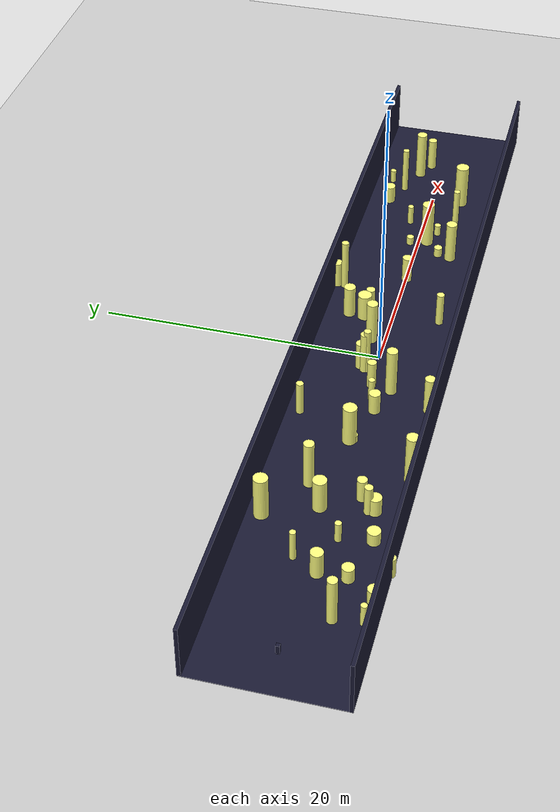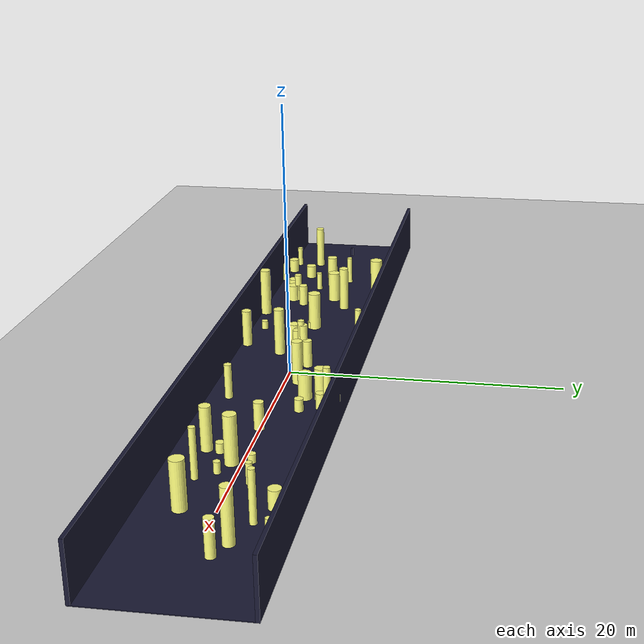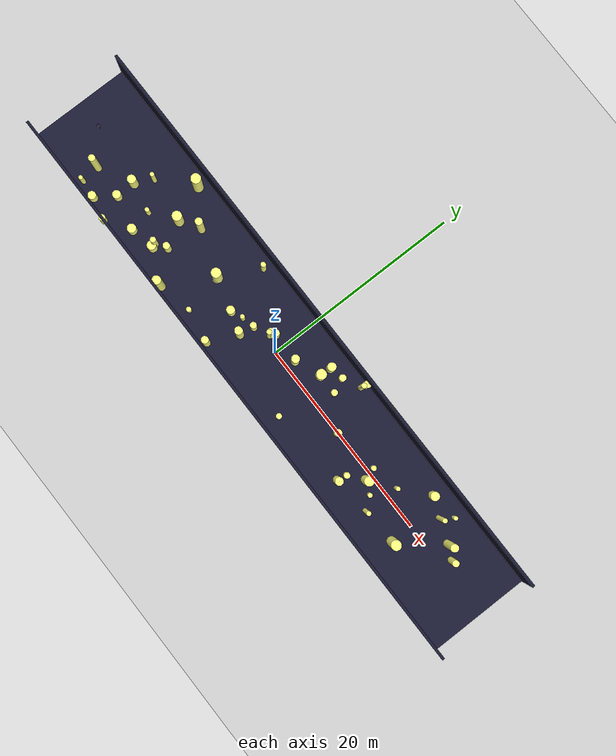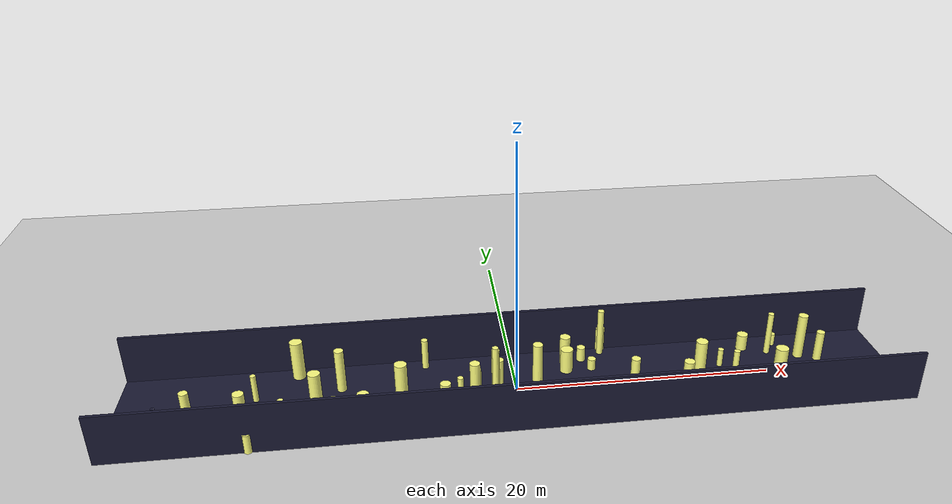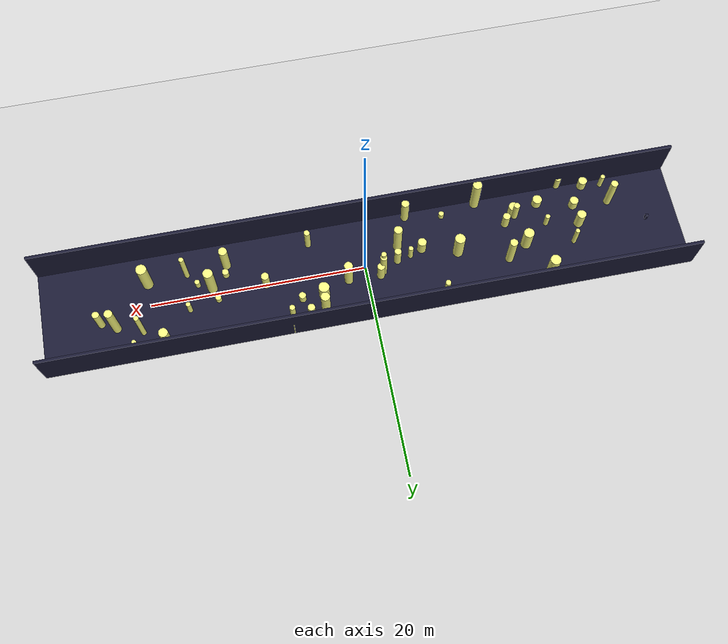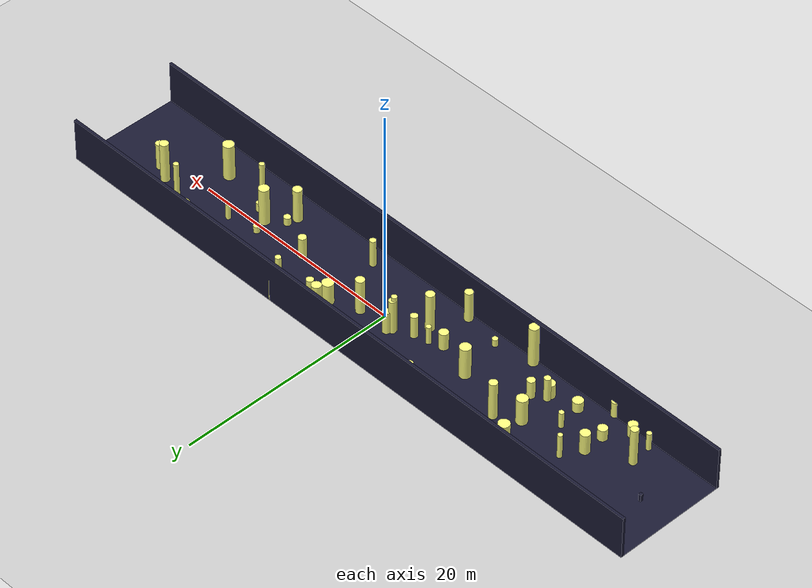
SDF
<?xml version="1.0"?>
<sdf version="1.4">
  <world name="default">
    <gui>
      <camera name="user_camera">
        <pose>-20 -30 40 0 0.66 0.83</pose>
      </camera>
    </gui>
    <include>
      <uri>model://ground_plane</uri>
    </include>
    <include>
      <uri>model://sun</uri>
    </include>
    <scene>
      <shadows>0</shadows>
    </scene>
    <model name="forest">
      <static>true</static>
      <link name="cylinder0">
        <pose>4.207462384008654 2.0124005233982887 1.0143114515591825 0 0 0 </pose>
        <visual name="visual">
          <geometry>
            <cylinder>
              <radius>0.4961914796225806</radius>
              <length>2.028622903118365</length>
            </cylinder>
          </geometry>
          <material>
            <ambient>0.6 0.6 0.6 1</ambient>
            <diffuse>1 1 0.5 1</diffuse>
            <specular>0 0 0</specular>
            <emissive>0 0 0 1</emissive>
          </material>
        </visual>
        <collision name="collision">
          <geometry>
            <cylinder>
              <radius>0.4961914796225806</radius>
              <length>2.028622903118365</length>
            </cylinder>
          </geometry>
          <max_contacts>0</max_contacts>
        </collision>
      </link>
      <link name="cylinder1">
        <pose>16.503894800346316 1.1303996438796826 0.7740977121148211 0 0 0 </pose>
        <visual name="visual">
          <geometry>
            <cylinder>
              <radius>0.21901101376045518</radius>
              <length>1.5481954242296423</length>
            </cylinder>
          </geometry>
          <material>
            <ambient>0.6 0.6 0.6 1</ambient>
            <diffuse>1 1 0.5 1</diffuse>
            <specular>0 0 0</specular>
            <emissive>0 0 0 1</emissive>
          </material>
        </visual>
        <collision name="collision">
          <geometry>
            <cylinder>
              <radius>0.21901101376045518</radius>
              <length>1.5481954242296423</length>
            </cylinder>
          </geometry>
          <max_contacts>0</max_contacts>
        </collision>
      </link>
      <link name="cylinder2">
        <pose>-1.2571074622218674 1.0588889887852568 1.0639597870531357 0 0 0 </pose>
        <visual name="visual">
          <geometry>
            <cylinder>
              <radius>0.3480653997893901</radius>
              <length>2.1279195741062713</length>
            </cylinder>
          </geometry>
          <material>
            <ambient>0.6 0.6 0.6 1</ambient>
            <diffuse>1 1 0.5 1</diffuse>
            <specular>0 0 0</specular>
            <emissive>0 0 0 1</emissive>
          </material>
        </visual>
        <collision name="collision">
          <geometry>
            <cylinder>
              <radius>0.3480653997893901</radius>
              <length>2.1279195741062713</length>
            </cylinder>
          </geometry>
          <max_contacts>0</max_contacts>
        </collision>
      </link>
      <link name="cylinder3">
        <pose>-3.3314136921522355 -1.5330139536178802 1.8297649361272734 0 0 0 </pose>
        <visual name="visual">
          <geometry>
            <cylinder>
              <radius>0.38803011518234964</radius>
              <length>3.659529872254547</length>
            </cylinder>
          </geometry>
          <material>
            <ambient>0.6 0.6 0.6 1</ambient>
            <diffuse>1 1 0.5 1</diffuse>
            <specular>0 0 0</specular>
            <emissive>0 0 0 1</emissive>
          </material>
        </visual>
        <collision name="collision">
          <geometry>
            <cylinder>
              <radius>0.38803011518234964</radius>
              <length>3.659529872254547</length>
            </cylinder>
          </geometry>
          <max_contacts>0</max_contacts>
        </collision>
      </link>
      <link name="cylinder4">
        <pose>-6.839889640970416 3.9485737746795646 1.2876052855601603 0 0 0 </pose>
        <visual name="visual">
          <geometry>
            <cylinder>
              <radius>0.25304900351984855</radius>
              <length>2.5752105711203206</length>
            </cylinder>
          </geometry>
          <material>
            <ambient>0.6 0.6 0.6 1</ambient>
            <diffuse>1 1 0.5 1</diffuse>
            <specular>0 0 0</specular>
            <emissive>0 0 0 1</emissive>
          </material>
        </visual>
        <collision name="collision">
          <geometry>
            <cylinder>
              <radius>0.25304900351984855</radius>
              <length>2.5752105711203206</length>
            </cylinder>
          </geometry>
          <max_contacts>0</max_contacts>
        </collision>
      </link>
      <link name="cylinder5">
        <pose>21.811122007107905 3.616574075852565 0.5295471856752879 0 0 0 </pose>
        <visual name="visual">
          <geometry>
            <cylinder>
              <radius>0.2138056266933654</radius>
              <length>1.0590943713505758</length>
            </cylinder>
          </geometry>
          <material>
            <ambient>0.6 0.6 0.6 1</ambient>
            <diffuse>1 1 0.5 1</diffuse>
            <specular>0 0 0</specular>
            <emissive>0 0 0 1</emissive>
          </material>
        </visual>
        <collision name="collision">
          <geometry>
            <cylinder>
              <radius>0.2138056266933654</radius>
              <length>1.0590943713505758</length>
            </cylinder>
          </geometry>
          <max_contacts>0</max_contacts>
        </collision>
      </link>
      <link name="cylinder6">
        <pose>15.490679764962053 -1.1866727142266553 0.44581196191695893 0 0 0 </pose>
        <visual name="visual">
          <geometry>
            <cylinder>
              <radius>0.2337264192884729</radius>
              <length>0.8916239238339179</length>
            </cylinder>
          </geometry>
          <material>
            <ambient>0.6 0.6 0.6 1</ambient>
            <diffuse>1 1 0.5 1</diffuse>
            <specular>0 0 0</specular>
            <emissive>0 0 0 1</emissive>
          </material>
        </visual>
        <collision name="collision">
          <geometry>
            <cylinder>
              <radius>0.2337264192884729</radius>
              <length>0.8916239238339179</length>
            </cylinder>
          </geometry>
          <max_contacts>0</max_contacts>
        </collision>
      </link>
      <link name="cylinder7">
        <pose>-4.610105147036553 -4.397541689260977 1.4437339379377543 0 0 0 </pose>
        <visual name="visual">
          <geometry>
            <cylinder>
              <radius>0.35809416290230306</radius>
              <length>2.8874678758755086</length>
            </cylinder>
          </geometry>
          <material>
            <ambient>0.6 0.6 0.6 1</ambient>
            <diffuse>1 1 0.5 1</diffuse>
            <specular>0 0 0</specular>
            <emissive>0 0 0 1</emissive>
          </material>
        </visual>
        <collision name="collision">
          <geometry>
            <cylinder>
              <radius>0.35809416290230306</radius>
              <length>2.8874678758755086</length>
            </cylinder>
          </geometry>
          <max_contacts>0</max_contacts>
        </collision>
      </link>
      <link name="cylinder8">
        <pose>-16.70384392320605 3.884796756335266 1.625202149748707 0 0 0 </pose>
        <visual name="visual">
          <geometry>
            <cylinder>
              <radius>0.4900319864771655</radius>
              <length>3.250404299497414</length>
            </cylinder>
          </geometry>
          <material>
            <ambient>0.6 0.6 0.6 1</ambient>
            <diffuse>1 1 0.5 1</diffuse>
            <specular>0 0 0</specular>
            <emissive>0 0 0 1</emissive>
          </material>
        </visual>
        <collision name="collision">
          <geometry>
            <cylinder>
              <radius>0.4900319864771655</radius>
              <length>3.250404299497414</length>
            </cylinder>
          </geometry>
          <max_contacts>0</max_contacts>
        </collision>
      </link>
      <link name="cylinder9">
        <pose>-1.5619298359917835 0.7207795170217377 1.6143439437256846 0 0 0 </pose>
        <visual name="visual">
          <geometry>
            <cylinder>
              <radius>0.31416586508432315</radius>
              <length>3.228687887451369</length>
            </cylinder>
          </geometry>
          <material>
            <ambient>0.6 0.6 0.6 1</ambient>
            <diffuse>1 1 0.5 1</diffuse>
            <specular>0 0 0</specular>
            <emissive>0 0 0 1</emissive>
          </material>
        </visual>
        <collision name="collision">
          <geometry>
            <cylinder>
              <radius>0.31416586508432315</radius>
              <length>3.228687887451369</length>
            </cylinder>
          </geometry>
          <max_contacts>0</max_contacts>
        </collision>
      </link>
      <link name="cylinder10">
        <pose>23.270171168695335 1.6734894421014 1.9090622724596977 0 0 0 </pose>
        <visual name="visual">
          <geometry>
            <cylinder>
              <radius>0.3827456616416114</radius>
              <length>3.8181245449193955</length>
            </cylinder>
          </geometry>
          <material>
            <ambient>0.6 0.6 0.6 1</ambient>
            <diffuse>1 1 0.5 1</diffuse>
            <specular>0 0 0</specular>
            <emissive>0 0 0 1</emissive>
          </material>
        </visual>
        <collision name="collision">
          <geometry>
            <cylinder>
              <radius>0.3827456616416114</radius>
              <length>3.8181245449193955</length>
            </cylinder>
          </geometry>
          <max_contacts>0</max_contacts>
        </collision>
      </link>
      <link name="cylinder11">
        <pose>-21.893467537018 -4.45291488045409 0.5842312328675338 0 0 0 </pose>
        <visual name="visual">
          <geometry>
            <cylinder>
              <radius>0.4033590323555616</radius>
              <length>1.1684624657350675</length>
            </cylinder>
          </geometry>
          <material>
            <ambient>0.6 0.6 0.6 1</ambient>
            <diffuse>1 1 0.5 1</diffuse>
            <specular>0 0 0</specular>
            <emissive>0 0 0 1</emissive>
          </material>
        </visual>
        <collision name="collision">
          <geometry>
            <cylinder>
              <radius>0.4033590323555616</radius>
              <length>1.1684624657350675</length>
            </cylinder>
          </geometry>
          <max_contacts>0</max_contacts>
        </collision>
      </link>
      <link name="cylinder12">
        <pose>-20.57528404254881 -2.597538009350311 0.5619214732392589 0 0 0 </pose>
        <visual name="visual">
          <geometry>
            <cylinder>
              <radius>0.41130171966658047</radius>
              <length>1.1238429464785178</length>
            </cylinder>
          </geometry>
          <material>
            <ambient>0.6 0.6 0.6 1</ambient>
            <diffuse>1 1 0.5 1</diffuse>
            <specular>0 0 0</specular>
            <emissive>0 0 0 1</emissive>
          </material>
        </visual>
        <collision name="collision">
          <geometry>
            <cylinder>
              <radius>0.41130171966658047</radius>
              <length>1.1238429464785178</length>
            </cylinder>
          </geometry>
          <max_contacts>0</max_contacts>
        </collision>
      </link>
      <link name="cylinder13">
        <pose>12.629321194451776 -2.6722837068491154 1.6068529922853552 0 0 0 </pose>
        <visual name="visual">
          <geometry>
            <cylinder>
              <radius>0.3961350075498339</radius>
              <length>3.2137059845707103</length>
            </cylinder>
          </geometry>
          <material>
            <ambient>0.6 0.6 0.6 1</ambient>
            <diffuse>1 1 0.5 1</diffuse>
            <specular>0 0 0</specular>
            <emissive>0 0 0 1</emissive>
          </material>
        </visual>
        <collision name="collision">
          <geometry>
            <cylinder>
              <radius>0.3961350075498339</radius>
              <length>3.2137059845707103</length>
            </cylinder>
          </geometry>
          <max_contacts>0</max_contacts>
        </collision>
      </link>
      <link name="cylinder14">
        <pose>-14.856804065980667 -2.5454073509658857 1.1288991256136471 0 0 0 </pose>
        <visual name="visual">
          <geometry>
            <cylinder>
              <radius>0.28445987101292286</radius>
              <length>2.2577982512272943</length>
            </cylinder>
          </geometry>
          <material>
            <ambient>0.6 0.6 0.6 1</ambient>
            <diffuse>1 1 0.5 1</diffuse>
            <specular>0 0 0</specular>
            <emissive>0 0 0 1</emissive>
          </material>
        </visual>
        <collision name="collision">
          <geometry>
            <cylinder>
              <radius>0.28445987101292286</radius>
              <length>2.2577982512272943</length>
            </cylinder>
          </geometry>
          <max_contacts>0</max_contacts>
        </collision>
      </link>
      <link name="cylinder15">
        <pose>4.265179666468256 3.135074294752128 1.2399874201561265 0 0 0 </pose>
        <visual name="visual">
          <geometry>
            <cylinder>
              <radius>0.4175504680054547</radius>
              <length>2.479974840312253</length>
            </cylinder>
          </geometry>
          <material>
            <ambient>0.6 0.6 0.6 1</ambient>
            <diffuse>1 1 0.5 1</diffuse>
            <specular>0 0 0</specular>
            <emissive>0 0 0 1</emissive>
          </material>
        </visual>
        <collision name="collision">
          <geometry>
            <cylinder>
              <radius>0.4175504680054547</radius>
              <length>2.479974840312253</length>
            </cylinder>
          </geometry>
          <max_contacts>0</max_contacts>
        </collision>
      </link>
      <link name="cylinder16">
        <pose>12.817386202606087 -1.729859327940594 0.3943249245855788 0 0 0 </pose>
        <visual name="visual">
          <geometry>
            <cylinder>
              <radius>0.3045503120598569</radius>
              <length>0.7886498491711575</length>
            </cylinder>
          </geometry>
          <material>
            <ambient>0.6 0.6 0.6 1</ambient>
            <diffuse>1 1 0.5 1</diffuse>
            <specular>0 0 0</specular>
            <emissive>0 0 0 1</emissive>
          </material>
        </visual>
        <collision name="collision">
          <geometry>
            <cylinder>
              <radius>0.3045503120598569</radius>
              <length>0.7886498491711575</length>
            </cylinder>
          </geometry>
          <max_contacts>0</max_contacts>
        </collision>
      </link>
      <link name="cylinder17">
        <pose>6.230235221788185 2.0030809036254347 0.49540171229052843 0 0 0 </pose>
        <visual name="visual">
          <geometry>
            <cylinder>
              <radius>0.3213882290122361</radius>
              <length>0.9908034245810569</length>
            </cylinder>
          </geometry>
          <material>
            <ambient>0.6 0.6 0.6 1</ambient>
            <diffuse>1 1 0.5 1</diffuse>
            <specular>0 0 0</specular>
            <emissive>0 0 0 1</emissive>
          </material>
        </visual>
        <collision name="collision">
          <geometry>
            <cylinder>
              <radius>0.3213882290122361</radius>
              <length>0.9908034245810569</length>
            </cylinder>
          </geometry>
          <max_contacts>0</max_contacts>
        </collision>
      </link>
      <link name="cylinder18">
        <pose>-1.5858248264119297 0.5533625153884962 1.7777227645040772 0 0 0 </pose>
        <visual name="visual">
          <geometry>
            <cylinder>
              <radius>0.24557690189991524</radius>
              <length>3.5554455290081544</length>
            </cylinder>
          </geometry>
          <material>
            <ambient>0.6 0.6 0.6 1</ambient>
            <diffuse>1 1 0.5 1</diffuse>
            <specular>0 0 0</specular>
            <emissive>0 0 0 1</emissive>
          </material>
        </visual>
        <collision name="collision">
          <geometry>
            <cylinder>
              <radius>0.24557690189991524</radius>
              <length>3.5554455290081544</length>
            </cylinder>
          </geometry>
          <max_contacts>0</max_contacts>
        </collision>
      </link>
      <link name="cylinder19">
        <pose>-13.784425643144422 -1.8990095026936316 0.8714203807095786 0 0 0 </pose>
        <visual name="visual">
          <geometry>
            <cylinder>
              <radius>0.34333280742411426</radius>
              <length>1.7428407614191572</length>
            </cylinder>
          </geometry>
          <material>
            <ambient>0.6 0.6 0.6 1</ambient>
            <diffuse>1 1 0.5 1</diffuse>
            <specular>0 0 0</specular>
            <emissive>0 0 0 1</emissive>
          </material>
        </visual>
        <collision name="collision">
          <geometry>
            <cylinder>
              <radius>0.34333280742411426</radius>
              <length>1.7428407614191572</length>
            </cylinder>
          </geometry>
          <max_contacts>0</max_contacts>
        </collision>
      </link>
      <link name="cylinder20">
        <pose>-5.510114892365376 -0.8622686153859069 0.8176378632308379 0 0 0 </pose>
        <visual name="visual">
          <geometry>
            <cylinder>
              <radius>0.4046559124061596</radius>
              <length>1.6352757264616757</length>
            </cylinder>
          </geometry>
          <material>
            <ambient>0.6 0.6 0.6 1</ambient>
            <diffuse>1 1 0.5 1</diffuse>
            <specular>0 0 0</specular>
            <emissive>0 0 0 1</emissive>
          </material>
        </visual>
        <collision name="collision">
          <geometry>
            <cylinder>
              <radius>0.4046559124061596</radius>
              <length>1.6352757264616757</length>
            </cylinder>
          </geometry>
          <max_contacts>0</max_contacts>
        </collision>
      </link>
      <link name="cylinder21">
        <pose>-20.625269855159083 -0.6772703685559689 0.9792619035124104 0 0 0 </pose>
        <visual name="visual">
          <geometry>
            <cylinder>
              <radius>0.4258782478705679</radius>
              <length>1.9585238070248208</length>
            </cylinder>
          </geometry>
          <material>
            <ambient>0.6 0.6 0.6 1</ambient>
            <diffuse>1 1 0.5 1</diffuse>
            <specular>0 0 0</specular>
            <emissive>0 0 0 1</emissive>
          </material>
        </visual>
        <collision name="collision">
          <geometry>
            <cylinder>
              <radius>0.4258782478705679</radius>
              <length>1.9585238070248208</length>
            </cylinder>
          </geometry>
          <max_contacts>0</max_contacts>
        </collision>
      </link>
      <link name="cylinder22">
        <pose>20.024410581286247 -2.179287432315573 1.7234857725924493 0 0 0 </pose>
        <visual name="visual">
          <geometry>
            <cylinder>
              <radius>0.48883687959172833</radius>
              <length>3.4469715451848986</length>
            </cylinder>
          </geometry>
          <material>
            <ambient>0.6 0.6 0.6 1</ambient>
            <diffuse>1 1 0.5 1</diffuse>
            <specular>0 0 0</specular>
            <emissive>0 0 0 1</emissive>
          </material>
        </visual>
        <collision name="collision">
          <geometry>
            <cylinder>
              <radius>0.48883687959172833</radius>
              <length>3.4469715451848986</length>
            </cylinder>
          </geometry>
          <max_contacts>0</max_contacts>
        </collision>
      </link>
      <link name="cylinder23">
        <pose>-11.394246340206793 -4.552248334575993 1.9045317333846643 0 0 0 </pose>
        <visual name="visual">
          <geometry>
            <cylinder>
              <radius>0.4274030021413975</radius>
              <length>3.8090634667693286</length>
            </cylinder>
          </geometry>
          <material>
            <ambient>0.6 0.6 0.6 1</ambient>
            <diffuse>1 1 0.5 1</diffuse>
            <specular>0 0 0</specular>
            <emissive>0 0 0 1</emissive>
          </material>
        </visual>
        <collision name="collision">
          <geometry>
            <cylinder>
              <radius>0.4274030021413975</radius>
              <length>3.8090634667693286</length>
            </cylinder>
          </geometry>
          <max_contacts>0</max_contacts>
        </collision>
      </link>
      <link name="cylinder24">
        <pose>1.737387208987677 0.9460059866056483 1.660675958394476 0 0 0 </pose>
        <visual name="visual">
          <geometry>
            <cylinder>
              <radius>0.39300450441880086</radius>
              <length>3.321351916788952</length>
            </cylinder>
          </geometry>
          <material>
            <ambient>0.6 0.6 0.6 1</ambient>
            <diffuse>1 1 0.5 1</diffuse>
            <specular>0 0 0</specular>
            <emissive>0 0 0 1</emissive>
          </material>
        </visual>
        <collision name="collision">
          <geometry>
            <cylinder>
              <radius>0.39300450441880086</radius>
              <length>3.321351916788952</length>
            </cylinder>
          </geometry>
          <max_contacts>0</max_contacts>
        </collision>
      </link>
      <link name="cylinder25">
        <pose>-13.341398156647411 1.669843097075443 1.790421180882257 0 0 0 </pose>
        <visual name="visual">
          <geometry>
            <cylinder>
              <radius>0.3601879938823923</radius>
              <length>3.580842361764514</length>
            </cylinder>
          </geometry>
          <material>
            <ambient>0.6 0.6 0.6 1</ambient>
            <diffuse>1 1 0.5 1</diffuse>
            <specular>0 0 0</specular>
            <emissive>0 0 0 1</emissive>
          </material>
        </visual>
        <collision name="collision">
          <geometry>
            <cylinder>
              <radius>0.3601879938823923</radius>
              <length>3.580842361764514</length>
            </cylinder>
          </geometry>
          <max_contacts>0</max_contacts>
        </collision>
      </link>
      <link name="cylinder26">
        <pose>-17.59626578043065 -1.2627842755554521 0.7643188162669996 0 0 0 </pose>
        <visual name="visual">
          <geometry>
            <cylinder>
              <radius>0.22346808834619097</radius>
              <length>1.5286376325339992</length>
            </cylinder>
          </geometry>
          <material>
            <ambient>0.6 0.6 0.6 1</ambient>
            <diffuse>1 1 0.5 1</diffuse>
            <specular>0 0 0</specular>
            <emissive>0 0 0 1</emissive>
          </material>
        </visual>
        <collision name="collision">
          <geometry>
            <cylinder>
              <radius>0.22346808834619097</radius>
              <length>1.5286376325339992</length>
            </cylinder>
          </geometry>
          <max_contacts>0</max_contacts>
        </collision>
      </link>
      <link name="cylinder27">
        <pose>7.34859919856266 4.217429921810796 1.9896668446493249 0 0 0 </pose>
        <visual name="visual">
          <geometry>
            <cylinder>
              <radius>0.2539999734382617</radius>
              <length>3.9793336892986497</length>
            </cylinder>
          </geometry>
          <material>
            <ambient>0.6 0.6 0.6 1</ambient>
            <diffuse>1 1 0.5 1</diffuse>
            <specular>0 0 0</specular>
            <emissive>0 0 0 1</emissive>
          </material>
        </visual>
        <collision name="collision">
          <geometry>
            <cylinder>
              <radius>0.2539999734382617</radius>
              <length>3.9793336892986497</length>
            </cylinder>
          </geometry>
          <max_contacts>0</max_contacts>
        </collision>
      </link>
      <link name="cylinder28">
        <pose>7.466032701552372 4.774269356951475 1.0253504847963364 0 0 0 </pose>
        <visual name="visual">
          <geometry>
            <cylinder>
              <radius>0.3554540240327714</radius>
              <length>2.050700969592673</length>
            </cylinder>
          </geometry>
          <material>
            <ambient>0.6 0.6 0.6 1</ambient>
            <diffuse>1 1 0.5 1</diffuse>
            <specular>0 0 0</specular>
            <emissive>0 0 0 1</emissive>
          </material>
        </visual>
        <collision name="collision">
          <geometry>
            <cylinder>
              <radius>0.3554540240327714</radius>
              <length>2.050700969592673</length>
            </cylinder>
          </geometry>
          <max_contacts>0</max_contacts>
        </collision>
      </link>
      <link name="cylinder29">
        <pose>-4.35498399314811 -0.39630701492192877 0.8616109231259678 0 0 0 </pose>
        <visual name="visual">
          <geometry>
            <cylinder>
              <radius>0.22413687687778394</radius>
              <length>1.7232218462519355</length>
            </cylinder>
          </geometry>
          <material>
            <ambient>0.6 0.6 0.6 1</ambient>
            <diffuse>1 1 0.5 1</diffuse>
            <specular>0 0 0</specular>
            <emissive>0 0 0 1</emissive>
          </material>
        </visual>
        <collision name="collision">
          <geometry>
            <cylinder>
              <radius>0.22413687687778394</radius>
              <length>1.7232218462519355</length>
            </cylinder>
          </geometry>
          <max_contacts>0</max_contacts>
        </collision>
      </link>
      <link name="cylinder30">
        <pose>20.939605826260433 2.493974207049341 1.8341618793688705 0 0 0 </pose>
        <visual name="visual">
          <geometry>
            <cylinder>
              <radius>0.231487869239185</radius>
              <length>3.668323758737741</length>
            </cylinder>
          </geometry>
          <material>
            <ambient>0.6 0.6 0.6 1</ambient>
            <diffuse>1 1 0.5 1</diffuse>
            <specular>0 0 0</specular>
            <emissive>0 0 0 1</emissive>
          </material>
        </visual>
        <collision name="collision">
          <geometry>
            <cylinder>
              <radius>0.231487869239185</radius>
              <length>3.668323758737741</length>
            </cylinder>
          </geometry>
          <max_contacts>0</max_contacts>
        </collision>
      </link>
      <link name="cylinder31">
        <pose>24.623879788536378 1.0135337590187294 1.2797999926145334 0 0 0 </pose>
        <visual name="visual">
          <geometry>
            <cylinder>
              <radius>0.32388002215279244</radius>
              <length>2.5595999852290667</length>
            </cylinder>
          </geometry>
          <material>
            <ambient>0.6 0.6 0.6 1</ambient>
            <diffuse>1 1 0.5 1</diffuse>
            <specular>0 0 0</specular>
            <emissive>0 0 0 1</emissive>
          </material>
        </visual>
        <collision name="collision">
          <geometry>
            <cylinder>
              <radius>0.32388002215279244</radius>
              <length>2.5595999852290667</length>
            </cylinder>
          </geometry>
          <max_contacts>0</max_contacts>
        </collision>
      </link>
      <link name="cylinder32">
        <pose>16.368894413037694 -2.3712126145533743 1.8062200674988813 0 0 0 </pose>
        <visual name="visual">
          <geometry>
            <cylinder>
              <radius>0.22968231346121482</radius>
              <length>3.6124401349977626</length>
            </cylinder>
          </geometry>
          <material>
            <ambient>0.6 0.6 0.6 1</ambient>
            <diffuse>1 1 0.5 1</diffuse>
            <specular>0 0 0</specular>
            <emissive>0 0 0 1</emissive>
          </material>
        </visual>
        <collision name="collision">
          <geometry>
            <cylinder>
              <radius>0.22968231346121482</radius>
              <length>3.6124401349977626</length>
            </cylinder>
          </geometry>
          <max_contacts>0</max_contacts>
        </collision>
      </link>
      <link name="cylinder33">
        <pose>-19.549947464783035 -4.979664280328716 0.7602079132885139 0 0 0 </pose>
        <visual name="visual">
          <geometry>
            <cylinder>
              <radius>0.31120860700818354</radius>
              <length>1.5204158265770278</length>
            </cylinder>
          </geometry>
          <material>
            <ambient>0.6 0.6 0.6 1</ambient>
            <diffuse>1 1 0.5 1</diffuse>
            <specular>0 0 0</specular>
            <emissive>0 0 0 1</emissive>
          </material>
        </visual>
        <collision name="collision">
          <geometry>
            <cylinder>
              <radius>0.31120860700818354</radius>
              <length>1.5204158265770278</length>
            </cylinder>
          </geometry>
          <max_contacts>0</max_contacts>
        </collision>
      </link>
      <link name="cylinder34">
        <pose>-17.205653061089677 -3.426526657278992 0.5112550923076401 0 0 0 </pose>
        <visual name="visual">
          <geometry>
            <cylinder>
              <radius>0.44591963627330955</radius>
              <length>1.0225101846152802</length>
            </cylinder>
          </geometry>
          <material>
            <ambient>0.6 0.6 0.6 1</ambient>
            <diffuse>1 1 0.5 1</diffuse>
            <specular>0 0 0</specular>
            <emissive>0 0 0 1</emissive>
          </material>
        </visual>
        <collision name="collision">
          <geometry>
            <cylinder>
              <radius>0.44591963627330955</radius>
              <length>1.0225101846152802</length>
            </cylinder>
          </geometry>
          <max_contacts>0</max_contacts>
        </collision>
      </link>
      <link name="cylinder35">
        <pose>5.63528579285164 3.39486299171959 0.6129443964031276 0 0 0 </pose>
        <visual name="visual">
          <geometry>
            <cylinder>
              <radius>0.3411465579599987</radius>
              <length>1.2258887928062552</length>
            </cylinder>
          </geometry>
          <material>
            <ambient>0.6 0.6 0.6 1</ambient>
            <diffuse>1 1 0.5 1</diffuse>
            <specular>0 0 0</specular>
            <emissive>0 0 0 1</emissive>
          </material>
        </visual>
        <collision name="collision">
          <geometry>
            <cylinder>
              <radius>0.3411465579599987</radius>
              <length>1.2258887928062552</length>
            </cylinder>
          </geometry>
          <max_contacts>0</max_contacts>
        </collision>
      </link>
      <link name="cylinder36">
        <pose>14.220198889191757 -0.608307813050164 1.7794650407977797 0 0 0 </pose>
        <visual name="visual">
          <geometry>
            <cylinder>
              <radius>0.45438874408199775</radius>
              <length>3.5589300815955593</length>
            </cylinder>
          </geometry>
          <material>
            <ambient>0.6 0.6 0.6 1</ambient>
            <diffuse>1 1 0.5 1</diffuse>
            <specular>0 0 0</specular>
            <emissive>0 0 0 1</emissive>
          </material>
        </visual>
        <collision name="collision">
          <geometry>
            <cylinder>
              <radius>0.45438874408199775</radius>
              <length>3.5589300815955593</length>
            </cylinder>
          </geometry>
          <max_contacts>0</max_contacts>
        </collision>
      </link>
      <link name="cylinder37">
        <pose>-8.784103179424346 0.085574258063712 1.499007568340403 0 0 0 </pose>
        <visual name="visual">
          <geometry>
            <cylinder>
              <radius>0.4793538214537366</radius>
              <length>2.998015136680806</length>
            </cylinder>
          </geometry>
          <material>
            <ambient>0.6 0.6 0.6 1</ambient>
            <diffuse>1 1 0.5 1</diffuse>
            <specular>0 0 0</specular>
            <emissive>0 0 0 1</emissive>
          </material>
        </visual>
        <collision name="collision">
          <geometry>
            <cylinder>
              <radius>0.4793538214537366</radius>
              <length>2.998015136680806</length>
            </cylinder>
          </geometry>
          <max_contacts>0</max_contacts>
        </collision>
      </link>
      <link name="cylinder38">
        <pose>9.274490867012922 -0.04529262604203943 1.0289913149402137 0 0 0 </pose>
        <visual name="visual">
          <geometry>
            <cylinder>
              <radius>0.3559522029751325</radius>
              <length>2.0579826298804273</length>
            </cylinder>
          </geometry>
          <material>
            <ambient>0.6 0.6 0.6 1</ambient>
            <diffuse>1 1 0.5 1</diffuse>
            <specular>0 0 0</specular>
            <emissive>0 0 0 1</emissive>
          </material>
        </visual>
        <collision name="collision">
          <geometry>
            <cylinder>
              <radius>0.3559522029751325</radius>
              <length>2.0579826298804273</length>
            </cylinder>
          </geometry>
          <max_contacts>0</max_contacts>
        </collision>
      </link>
      <link name="cylinder39">
        <pose>-14.736887998156762 -2.9530607140471465 0.6848875862468603 0 0 0 </pose>
        <visual name="visual">
          <geometry>
            <cylinder>
              <radius>0.44019974628956415</radius>
              <length>1.3697751724937206</length>
            </cylinder>
          </geometry>
          <material>
            <ambient>0.6 0.6 0.6 1</ambient>
            <diffuse>1 1 0.5 1</diffuse>
            <specular>0 0 0</specular>
            <emissive>0 0 0 1</emissive>
          </material>
        </visual>
        <collision name="collision">
          <geometry>
            <cylinder>
              <radius>0.44019974628956415</radius>
              <length>1.3697751724937206</length>
            </cylinder>
          </geometry>
          <max_contacts>0</max_contacts>
        </collision>
      </link>
      <link name="cylinder40">
        <pose>-23.91136535491957 -2.406280440502905 1.7681575521304946 0 0 0 </pose>
        <visual name="visual">
          <geometry>
            <cylinder>
              <radius>0.332143399313381</radius>
              <length>3.5363151042609893</length>
            </cylinder>
          </geometry>
          <material>
            <ambient>0.6 0.6 0.6 1</ambient>
            <diffuse>1 1 0.5 1</diffuse>
            <specular>0 0 0</specular>
            <emissive>0 0 0 1</emissive>
          </material>
        </visual>
        <collision name="collision">
          <geometry>
            <cylinder>
              <radius>0.332143399313381</radius>
              <length>3.5363151042609893</length>
            </cylinder>
          </geometry>
          <max_contacts>0</max_contacts>
        </collision>
      </link>
      <link name="cylinder41">
        <pose>-23.705529450207692 -4.263989634335261 0.8408022367071972 0 0 0 </pose>
        <visual name="visual">
          <geometry>
            <cylinder>
              <radius>0.2139082835759265</radius>
              <length>1.6816044734143945</length>
            </cylinder>
          </geometry>
          <material>
            <ambient>0.6 0.6 0.6 1</ambient>
            <diffuse>1 1 0.5 1</diffuse>
            <specular>0 0 0</specular>
            <emissive>0 0 0 1</emissive>
          </material>
        </visual>
        <collision name="collision">
          <geometry>
            <cylinder>
              <radius>0.2139082835759265</radius>
              <length>1.6816044734143945</length>
            </cylinder>
          </geometry>
          <max_contacts>0</max_contacts>
        </collision>
      </link>
      <link name="cylinder42">
        <pose>-8.711321306811747 -0.18571287761480804 0.2933266077587212 0 0 0 </pose>
        <visual name="visual">
          <geometry>
            <cylinder>
              <radius>0.2833979442171311</radius>
              <length>0.5866532155174424</length>
            </cylinder>
          </geometry>
          <material>
            <ambient>0.6 0.6 0.6 1</ambient>
            <diffuse>1 1 0.5 1</diffuse>
            <specular>0 0 0</specular>
            <emissive>0 0 0 1</emissive>
          </material>
        </visual>
        <collision name="collision">
          <geometry>
            <cylinder>
              <radius>0.2833979442171311</radius>
              <length>0.5866532155174424</length>
            </cylinder>
          </geometry>
          <max_contacts>0</max_contacts>
        </collision>
      </link>
      <link name="cylinder43">
        <pose>-3.0643154681971865 -0.12036567736432424 1.075435898732774 0 0 0 </pose>
        <visual name="visual">
          <geometry>
            <cylinder>
              <radius>0.31721933800066665</radius>
              <length>2.150871797465548</length>
            </cylinder>
          </geometry>
          <material>
            <ambient>0.6 0.6 0.6 1</ambient>
            <diffuse>1 1 0.5 1</diffuse>
            <specular>0 0 0</specular>
            <emissive>0 0 0 1</emissive>
          </material>
        </visual>
        <collision name="collision">
          <geometry>
            <cylinder>
              <radius>0.31721933800066665</radius>
              <length>2.150871797465548</length>
            </cylinder>
          </geometry>
          <max_contacts>0</max_contacts>
        </collision>
      </link>
      <link name="cylinder44">
        <pose>13.805368916333578 0.6059422583203027 0.3389972924761455 0 0 0 </pose>
        <visual name="visual">
          <geometry>
            <cylinder>
              <radius>0.267856454950641</radius>
              <length>0.677994584952291</length>
            </cylinder>
          </geometry>
          <material>
            <ambient>0.6 0.6 0.6 1</ambient>
            <diffuse>1 1 0.5 1</diffuse>
            <specular>0 0 0</specular>
            <emissive>0 0 0 1</emissive>
          </material>
        </visual>
        <collision name="collision">
          <geometry>
            <cylinder>
              <radius>0.267856454950641</radius>
              <length>0.677994584952291</length>
            </cylinder>
          </geometry>
          <max_contacts>0</max_contacts>
        </collision>
      </link>
      <link name="cylinder45">
        <pose>-8.030151113323146 -3.836113660534408 0.366880404330937 0 0 0 </pose>
        <visual name="visual">
          <geometry>
            <cylinder>
              <radius>0.24781026498671688</radius>
              <length>0.733760808661874</length>
            </cylinder>
          </geometry>
          <material>
            <ambient>0.6 0.6 0.6 1</ambient>
            <diffuse>1 1 0.5 1</diffuse>
            <specular>0 0 0</specular>
            <emissive>0 0 0 1</emissive>
          </material>
        </visual>
        <collision name="collision">
          <geometry>
            <cylinder>
              <radius>0.24781026498671688</radius>
              <length>0.733760808661874</length>
            </cylinder>
          </geometry>
          <max_contacts>0</max_contacts>
        </collision>
      </link>
      <link name="cylinder46">
        <pose>-19.720418028162673 1.051972030711596 1.1455087336323697 0 0 0 </pose>
        <visual name="visual">
          <geometry>
            <cylinder>
              <radius>0.21111441034662645</radius>
              <length>2.2910174672647394</length>
            </cylinder>
          </geometry>
          <material>
            <ambient>0.6 0.6 0.6 1</ambient>
            <diffuse>1 1 0.5 1</diffuse>
            <specular>0 0 0</specular>
            <emissive>0 0 0 1</emissive>
          </material>
        </visual>
        <collision name="collision">
          <geometry>
            <cylinder>
              <radius>0.21111441034662645</radius>
              <length>2.2910174672647394</length>
            </cylinder>
          </geometry>
          <max_contacts>0</max_contacts>
        </collision>
      </link>
      <link name="cylinder47">
        <pose>4.833421900177836 -3.331405203705513 1.2983516589038944 0 0 0 </pose>
        <visual name="visual">
          <geometry>
            <cylinder>
              <radius>0.27174478852393547</radius>
              <length>2.5967033178077887</length>
            </cylinder>
          </geometry>
          <material>
            <ambient>0.6 0.6 0.6 1</ambient>
            <diffuse>1 1 0.5 1</diffuse>
            <specular>0 0 0</specular>
            <emissive>0 0 0 1</emissive>
          </material>
        </visual>
        <collision name="collision">
          <geometry>
            <cylinder>
              <radius>0.27174478852393547</radius>
              <length>2.5967033178077887</length>
            </cylinder>
          </geometry>
          <max_contacts>0</max_contacts>
        </collision>
      </link>
      <link name="cylinder48">
        <pose>19.088314584427096 3.34631097474629 0.7036472007414125 0 0 0 </pose>
        <visual name="visual">
          <geometry>
            <cylinder>
              <radius>0.43717879880785093</radius>
              <length>1.407294401482825</length>
            </cylinder>
          </geometry>
          <material>
            <ambient>0.6 0.6 0.6 1</ambient>
            <diffuse>1 1 0.5 1</diffuse>
            <specular>0 0 0</specular>
            <emissive>0 0 0 1</emissive>
          </material>
        </visual>
        <collision name="collision">
          <geometry>
            <cylinder>
              <radius>0.43717879880785093</radius>
              <length>1.407294401482825</length>
            </cylinder>
          </geometry>
          <max_contacts>0</max_contacts>
        </collision>
      </link>
      <link name="cylinder49">
        <pose>-15.21490678036943 0.4939602795945417 1.2397550895627076 0 0 0 </pose>
        <visual name="visual">
          <geometry>
            <cylinder>
              <radius>0.4760945586306514</radius>
              <length>2.4795101791254153</length>
            </cylinder>
          </geometry>
          <material>
            <ambient>0.6 0.6 0.6 1</ambient>
            <diffuse>1 1 0.5 1</diffuse>
            <specular>0 0 0</specular>
            <emissive>0 0 0 1</emissive>
          </material>
        </visual>
        <collision name="collision">
          <geometry>
            <cylinder>
              <radius>0.4760945586306514</radius>
              <length>2.4795101791254153</length>
            </cylinder>
          </geometry>
          <max_contacts>0</max_contacts>
        </collision>
      </link>
      <link name="cube0">
        <pose>0 5.0 2.0 0 0 0 </pose>
        <visual name="visual">
          <geometry>
            <box>
              <size>60.0 0.25 4.0</size>
            </box>
          </geometry>
          <material>
            <ambient>0.1 0.1 0.1 1</ambient>
            <diffuse>0.1 0.1 0.2 1</diffuse>
            <specular>0 0 0</specular>
            <emissive>0 0 0 1</emissive>
          </material>
        </visual>
        <collision name="collision">
          <geometry>
            <box>
              <size>60.0 0.25 4.0</size>
            </box>
          </geometry>
          <max_contacts>0</max_contacts>
        </collision>
      </link>
      <link name="cube1">
        <pose>0 -5.0 2.0 0 0 0 </pose>
        <visual name="visual">
          <geometry>
            <box>
              <size>60.0 0.25 4.0</size>
            </box>
          </geometry>
          <material>
            <ambient>0.1 0.1 0.1 1</ambient>
            <diffuse>0.1 0.1 0.2 1</diffuse>
            <specular>0 0 0</specular>
            <emissive>0 0 0 1</emissive>
          </material>
        </visual>
        <collision name="collision">
          <geometry>
            <box>
              <size>60.0 0.25 4.0</size>
            </box>
          </geometry>
          <max_contacts>0</max_contacts>
        </collision>
      </link>
      <link name="cube2">
        <pose>0 0 0.03125 0 0 0 </pose>
        <visual name="visual">
          <geometry>
            <box>
              <size>60.0 10 0.0625</size>
            </box>
          </geometry>
          <material>
            <ambient>0.1 0.1 0.1 1</ambient>
            <diffuse>0.1 0.1 0.2 1</diffuse>
            <specular>0 0 0</specular>
            <emissive>0 0 0 1</emissive>
          </material>
        </visual>
        <collision name="collision">
          <geometry>
            <box>
              <size>60.0 10 0.0625</size>
            </box>
          </geometry>
          <max_contacts>0</max_contacts>
        </collision>
      </link>
      <link name="cube3">
        <pose>-27.0 0.0 0.25 0 0 0 </pose>
        <visual name="visual">
          <geometry>
            <box>
              <size>0.25 0.25 1.0</size>
            </box>
          </geometry>
          <material>
            <ambient>0.1 0.1 0.1 1</ambient>
            <diffuse>0.1 0.1 0.2 1</diffuse>
            <specular>0 0 0</specular>
            <emissive>0 0 0 1</emissive>
          </material>
        </visual>
        <collision name="collision">
          <geometry>
            <box>
              <size>0.25 0.25 1.0</size>
            </box>
          </geometry>
          <max_contacts>0</max_contacts>
        </collision>
      </link>
    </model>
    <!-- Physics -->
    <physics name="default_physics" default="0" type="ode">
      <max_step_size>0.004</max_step_size>
      <real_time_factor>1</real_time_factor>
      <real_time_update_rate>250</real_time_update_rate>
      <gravity>0 0 -9.8</gravity>
      <magnetic_field>6e-06 2.3e-05 -4.2e-05</magnetic_field>
      <ode>
        <solver>
          <type>quick</type>
          <iters>1000</iters>
          <sor>1.3</sor>
          <use_dynamic_moi_rescaling>0</use_dynamic_moi_rescaling>
        </solver>
        <constraints>
          <cfm>0</cfm>
          <erp>0.2</erp>
          <contact_max_correcting_vel>100</contact_max_correcting_vel>
          <contact_surface_layer>0.001</contact_surface_layer>
        </constraints>
      </ode>
    </physics>
  </world>
</sdf>
